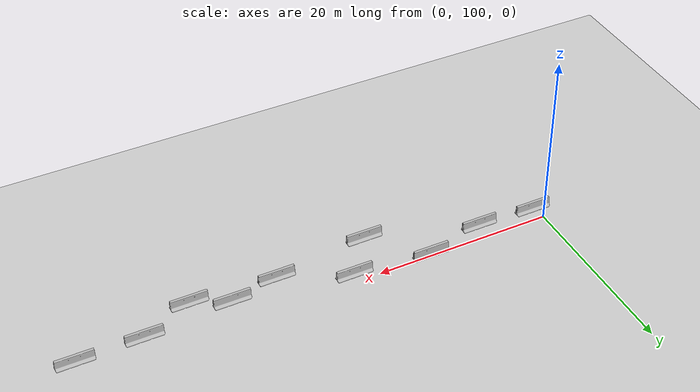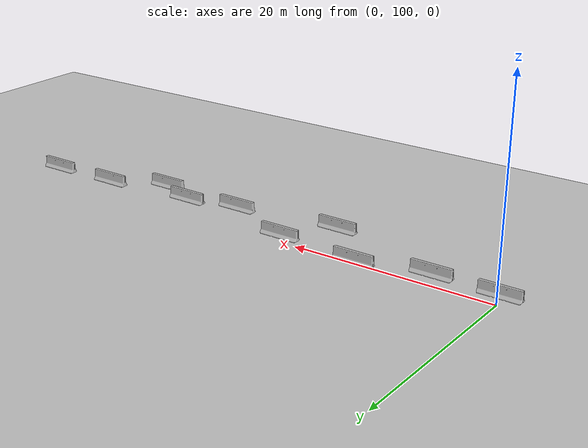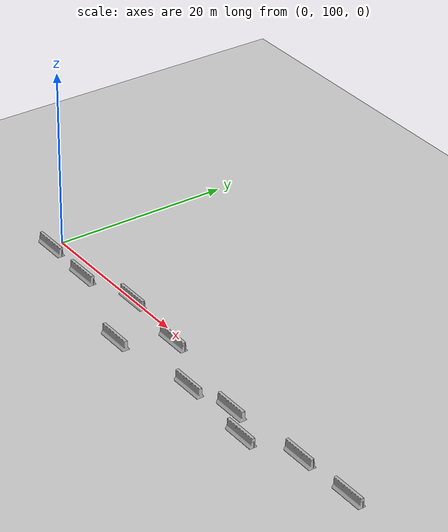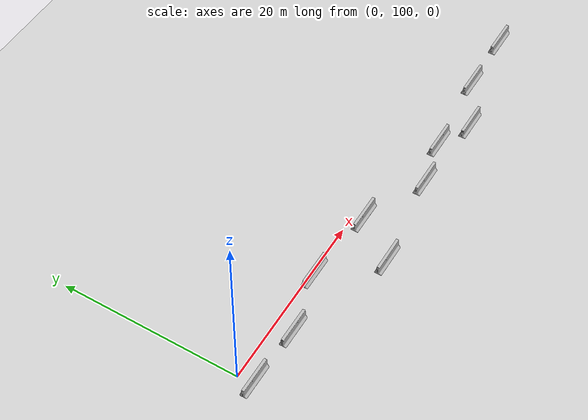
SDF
<sdf version="1.0">
 <world name="default">
  <model name="ground_plane">
   <static>1</static>
   <link name="link">
    <collision name="collision">
     <geometry><plane><normal>0 0 1</normal><size>200 200</size></plane></geometry>
     <surface><friction><ode><mu>100</mu><mu2>50</mu2></ode></friction></surface>
    </collision>
    <visual name="visual">
     <cast_shadows>0</cast_shadows>
     <geometry><plane><normal>0 0 1</normal><size>200 200</size></plane></geometry>
     <material>
      <script><uri>file://media/materials/scripts/gazebo.material</uri><name>Gazebo/Grey</name></script>
     </material>
    </visual>
    <velocity_decay><linear>0</linear><angular>0</angular></velocity_decay>
   </link>
  </model>
  <model name="jersey_barrier_10">
   <static>1</static>
   <link name="link">
    <visual name="visual">
     <geometry><mesh><uri>model://jersey_barrier/meshes/jersey_barrier.dae</uri></mesh></geometry>
    </visual>
    <collision name="upright">
     <pose>0 0 0.5715 0 -0 0</pose>
     <geometry><box><size>4.06542 0.3063 1.143</size></box></geometry>
    </collision>
    <collision name="base">
     <pose>0 0 0.032258 0 -0 0</pose>
     <geometry><box><size>4.06542 0.8107 0.064516</size></box></geometry>
    </collision>
    <collision name="base2">
     <pose>0 0 0.1 0 -0 0</pose>
     <geometry><box><size>4.06542 0.65 0.1</size></box></geometry>
    </collision>
    <collision name="base3">
     <pose>0 0 0.2 0 -0 0</pose>
     <geometry><box><size>4.06542 0.5 0.1</size></box></geometry>
    </collision>
    <collision name="left-angle">
     <pose>0 -0.224 0.2401 0.9 -0 0</pose>
     <geometry><box><size>4.06542 0.5 0.064516</size></box></geometry>
    </collision>
    <collision name="right-angle">
     <pose>0 0.224 0.2401 -0.9 0 0</pose>
     <geometry><box><size>4.06542 0.5 0.064516</size></box></geometry>
    </collision>
   </link>
   <pose>52.2741 97.9566 0 0 -0 0</pose>
  </model>
  <model name="jersey_barrier_11">
   <static>1</static>
   <link name="link">
    <visual name="visual">
     <geometry><mesh><uri>model://jersey_barrier/meshes/jersey_barrier.dae</uri></mesh></geometry>
    </visual>
    <collision name="upright">
     <pose>0 0 0.5715 0 -0 0</pose>
     <geometry><box><size>4.06542 0.3063 1.143</size></box></geometry>
    </collision>
    <collision name="base">
     <pose>0 0 0.032258 0 -0 0</pose>
     <geometry><box><size>4.06542 0.8107 0.064516</size></box></geometry>
    </collision>
    <collision name="base2">
     <pose>0 0 0.1 0 -0 0</pose>
     <geometry><box><size>4.06542 0.65 0.1</size></box></geometry>
    </collision>
    <collision name="base3">
     <pose>0 0 0.2 0 -0 0</pose>
     <geometry><box><size>4.06542 0.5 0.1</size></box></geometry>
    </collision>
    <collision name="left-angle">
     <pose>0 -0.224 0.2401 0.9 -0 0</pose>
     <geometry><box><size>4.06542 0.5 0.064516</size></box></geometry>
    </collision>
    <collision name="right-angle">
     <pose>0 0.224 0.2401 -0.9 0 0</pose>
     <geometry><box><size>4.06542 0.5 0.064516</size></box></geometry>
    </collision>
   </link>
   <pose>45.0807 97.7999 0 0 -0 0</pose>
  </model>
  <model name="jersey_barrier_12">
   <static>1</static>
   <link name="link">
    <visual name="visual">
     <geometry><mesh><uri>model://jersey_barrier/meshes/jersey_barrier.dae</uri></mesh></geometry>
    </visual>
    <collision name="upright">
     <pose>0 0 0.5715 0 -0 0</pose>
     <geometry><box><size>4.06542 0.3063 1.143</size></box></geometry>
    </collision>
    <collision name="base">
     <pose>0 0 0.032258 0 -0 0</pose>
     <geometry><box><size>4.06542 0.8107 0.064516</size></box></geometry>
    </collision>
    <collision name="base2">
     <pose>0 0 0.1 0 -0 0</pose>
     <geometry><box><size>4.06542 0.65 0.1</size></box></geometry>
    </collision>
    <collision name="base3">
     <pose>0 0 0.2 0 -0 0</pose>
     <geometry><box><size>4.06542 0.5 0.1</size></box></geometry>
    </collision>
    <collision name="left-angle">
     <pose>0 -0.224 0.2401 0.9 -0 0</pose>
     <geometry><box><size>4.06542 0.5 0.064516</size></box></geometry>
    </collision>
    <collision name="right-angle">
     <pose>0 0.224 0.2401 -0.9 0 0</pose>
     <geometry><box><size>4.06542 0.5 0.064516</size></box></geometry>
    </collision>
   </link>
   <pose>35.3415 96.9572 0 0 -0 0</pose>
  </model>
  <model name="jersey_barrier_13">
   <static>1</static>
   <link name="link">
    <visual name="visual">
     <geometry><mesh><uri>model://jersey_barrier/meshes/jersey_barrier.dae</uri></mesh></geometry>
    </visual>
    <collision name="upright">
     <pose>0 0 0.5715 0 -0 0</pose>
     <geometry><box><size>4.06542 0.3063 1.143</size></box></geometry>
    </collision>
    <collision name="base">
     <pose>0 0 0.032258 0 -0 0</pose>
     <geometry><box><size>4.06542 0.8107 0.064516</size></box></geometry>
    </collision>
    <collision name="base2">
     <pose>0 0 0.1 0 -0 0</pose>
     <geometry><box><size>4.06542 0.65 0.1</size></box></geometry>
    </collision>
    <collision name="base3">
     <pose>0 0 0.2 0 -0 0</pose>
     <geometry><box><size>4.06542 0.5 0.1</size></box></geometry>
    </collision>
    <collision name="left-angle">
     <pose>0 -0.224 0.2401 0.9 -0 0</pose>
     <geometry><box><size>4.06542 0.5 0.064516</size></box></geometry>
    </collision>
    <collision name="right-angle">
     <pose>0 0.224 0.2401 -0.9 0 0</pose>
     <geometry><box><size>4.06542 0.5 0.064516</size></box></geometry>
    </collision>
   </link>
   <pose>39.3518 95.2275 0 0 -0 0</pose>
  </model>
  <model name="jersey_barrier_14">
   <static>1</static>
   <link name="link">
    <visual name="visual">
     <geometry><mesh><uri>model://jersey_barrier/meshes/jersey_barrier.dae</uri></mesh></geometry>
    </visual>
    <collision name="upright">
     <pose>0 0 0.5715 0 -0 0</pose>
     <geometry><box><size>4.06542 0.3063 1.143</size></box></geometry>
    </collision>
    <collision name="base">
     <pose>0 0 0.032258 0 -0 0</pose>
     <geometry><box><size>4.06542 0.8107 0.064516</size></box></geometry>
    </collision>
    <collision name="base2">
     <pose>0 0 0.1 0 -0 0</pose>
     <geometry><box><size>4.06542 0.65 0.1</size></box></geometry>
    </collision>
    <collision name="base3">
     <pose>0 0 0.2 0 -0 0</pose>
     <geometry><box><size>4.06542 0.5 0.1</size></box></geometry>
    </collision>
    <collision name="left-angle">
     <pose>0 -0.224 0.2401 0.9 -0 0</pose>
     <geometry><box><size>4.06542 0.5 0.064516</size></box></geometry>
    </collision>
    <collision name="right-angle">
     <pose>0 0.224 0.2401 -0.9 0 0</pose>
     <geometry><box><size>4.06542 0.5 0.064516</size></box></geometry>
    </collision>
   </link>
   <pose>29.9046 95.7893 0 0 -0 0</pose>
  </model>
  <model name="jersey_barrier_16">
   <static>1</static>
   <link name="link">
    <visual name="visual">
     <geometry><mesh><uri>model://jersey_barrier/meshes/jersey_barrier.dae</uri></mesh></geometry>
    </visual>
    <collision name="upright">
     <pose>0 0 0.5715 0 -0 0</pose>
     <geometry><box><size>4.06542 0.3063 1.143</size></box></geometry>
    </collision>
    <collision name="base">
     <pose>0 0 0.032258 0 -0 0</pose>
     <geometry><box><size>4.06542 0.8107 0.064516</size></box></geometry>
    </collision>
    <collision name="base2">
     <pose>0 0 0.1 0 -0 0</pose>
     <geometry><box><size>4.06542 0.65 0.1</size></box></geometry>
    </collision>
    <collision name="base3">
     <pose>0 0 0.2 0 -0 0</pose>
     <geometry><box><size>4.06542 0.5 0.1</size></box></geometry>
    </collision>
    <collision name="left-angle">
     <pose>0 -0.224 0.2401 0.9 -0 0</pose>
     <geometry><box><size>4.06542 0.5 0.064516</size></box></geometry>
    </collision>
    <collision name="right-angle">
     <pose>0 0.224 0.2401 -0.9 0 0</pose>
     <geometry><box><size>4.06542 0.5 0.064516</size></box></geometry>
    </collision>
   </link>
   <pose>22.4772 98.9588 0 0 -0 0</pose>
  </model>
  <model name="jersey_barrier_17">
   <static>1</static>
   <link name="link">
    <visual name="visual">
     <geometry><mesh><uri>model://jersey_barrier/meshes/jersey_barrier.dae</uri></mesh></geometry>
    </visual>
    <collision name="upright">
     <pose>0 0 0.5715 0 -0 0</pose>
     <geometry><box><size>4.06542 0.3063 1.143</size></box></geometry>
    </collision>
    <collision name="base">
     <pose>0 0 0.032258 0 -0 0</pose>
     <geometry><box><size>4.06542 0.8107 0.064516</size></box></geometry>
    </collision>
    <collision name="base2">
     <pose>0 0 0.1 0 -0 0</pose>
     <geometry><box><size>4.06542 0.65 0.1</size></box></geometry>
    </collision>
    <collision name="base3">
     <pose>0 0 0.2 0 -0 0</pose>
     <geometry><box><size>4.06542 0.5 0.1</size></box></geometry>
    </collision>
    <collision name="left-angle">
     <pose>0 -0.224 0.2401 0.9 -0 0</pose>
     <geometry><box><size>4.06542 0.5 0.064516</size></box></geometry>
    </collision>
    <collision name="right-angle">
     <pose>0 0.224 0.2401 -0.9 0 0</pose>
     <geometry><box><size>4.06542 0.5 0.064516</size></box></geometry>
    </collision>
   </link>
   <pose>13.8876 99.8015 0 0 -0 0</pose>
  </model>
  <model name="jersey_barrier_18">
   <static>1</static>
   <link name="link">
    <visual name="visual">
     <geometry><mesh><uri>model://jersey_barrier/meshes/jersey_barrier.dae</uri></mesh></geometry>
    </visual>
    <collision name="upright">
     <pose>0 0 0.5715 0 -0 0</pose>
     <geometry><box><size>4.06542 0.3063 1.143</size></box></geometry>
    </collision>
    <collision name="base">
     <pose>0 0 0.032258 0 -0 0</pose>
     <geometry><box><size>4.06542 0.8107 0.064516</size></box></geometry>
    </collision>
    <collision name="base2">
     <pose>0 0 0.1 0 -0 0</pose>
     <geometry><box><size>4.06542 0.65 0.1</size></box></geometry>
    </collision>
    <collision name="base3">
     <pose>0 0 0.2 0 -0 0</pose>
     <geometry><box><size>4.06542 0.5 0.1</size></box></geometry>
    </collision>
    <collision name="left-angle">
     <pose>0 -0.224 0.2401 0.9 -0 0</pose>
     <geometry><box><size>4.06542 0.5 0.064516</size></box></geometry>
    </collision>
    <collision name="right-angle">
     <pose>0 0.224 0.2401 -0.9 0 0</pose>
     <geometry><box><size>4.06542 0.5 0.064516</size></box></geometry>
    </collision>
   </link>
   <pose>19.0417 94.3609 0 0 -0 0</pose>
  </model>
  <model name="jersey_barrier_19">
   <static>1</static>
   <link name="link">
    <visual name="visual">
     <geometry><mesh><uri>model://jersey_barrier/meshes/jersey_barrier.dae</uri></mesh></geometry>
    </visual>
    <collision name="upright">
     <pose>0 0 0.5715 0 -0 0</pose>
     <geometry><box><size>4.06542 0.3063 1.143</size></box></geometry>
    </collision>
    <collision name="base">
     <pose>0 0 0.032258 0 -0 0</pose>
     <geometry><box><size>4.06542 0.8107 0.064516</size></box></geometry>
    </collision>
    <collision name="base2">
     <pose>0 0 0.1 0 -0 0</pose>
     <geometry><box><size>4.06542 0.65 0.1</size></box></geometry>
    </collision>
    <collision name="base3">
     <pose>0 0 0.2 0 -0 0</pose>
     <geometry><box><size>4.06542 0.5 0.1</size></box></geometry>
    </collision>
    <collision name="left-angle">
     <pose>0 -0.224 0.2401 0.9 -0 0</pose>
     <geometry><box><size>4.06542 0.5 0.064516</size></box></geometry>
    </collision>
    <collision name="right-angle">
     <pose>0 0.224 0.2401 -0.9 0 0</pose>
     <geometry><box><size>4.06542 0.5 0.064516</size></box></geometry>
    </collision>
   </link>
   <pose>7.01473 98.1013 0 0 -0 0</pose>
  </model>
  <model name="jersey_barrier_20">
   <static>1</static>
   <link name="link">
    <visual name="visual">
     <geometry><mesh><uri>model://jersey_barrier/meshes/jersey_barrier.dae</uri></mesh></geometry>
    </visual>
    <collision name="upright">
     <pose>0 0 0.5715 0 -0 0</pose>
     <geometry><box><size>4.06542 0.3063 1.143</size></box></geometry>
    </collision>
    <collision name="base">
     <pose>0 0 0.032258 0 -0 0</pose>
     <geometry><box><size>4.06542 0.8107 0.064516</size></box></geometry>
    </collision>
    <collision name="base2">
     <pose>0 0 0.1 0 -0 0</pose>
     <geometry><box><size>4.06542 0.65 0.1</size></box></geometry>
    </collision>
    <collision name="base3">
     <pose>0 0 0.2 0 -0 0</pose>
     <geometry><box><size>4.06542 0.5 0.1</size></box></geometry>
    </collision>
    <collision name="left-angle">
     <pose>0 -0.224 0.2401 0.9 -0 0</pose>
     <geometry><box><size>4.06542 0.5 0.064516</size></box></geometry>
    </collision>
    <collision name="right-angle">
     <pose>0 0.224 0.2401 -0.9 0 0</pose>
     <geometry><box><size>4.06542 0.5 0.064516</size></box></geometry>
    </collision>
   </link>
   <pose>0.430173 98.3822 0 0 -0 0</pose>
  </model>
 </world>
</sdf>
